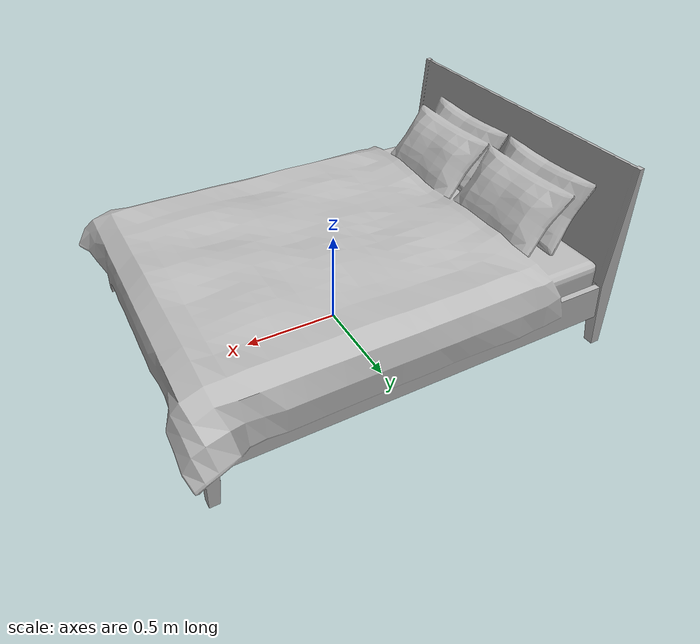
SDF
<?xml version='1.0'?>
<sdf version='1.4'>
  <model name='s__893'>
    <pose>0 0 0 0 0 0</pose>
    <static>true</static>
    <link name='link'>
      <collision name='collision'>
        <pose>0 0 0 0 0 0</pose>
        <geometry>
          <box>
            <size>2.22998 1.88 2</size>
          </box>
        </geometry>
      </collision>
      <visual name='visual'>
        <pose>0 0 0 0 0 0</pose>
        <geometry>
          <mesh><uri>model://s__893/s__893.dae</uri></mesh>
        </geometry>
      </visual>
    </link>
  </model>
</sdf>
